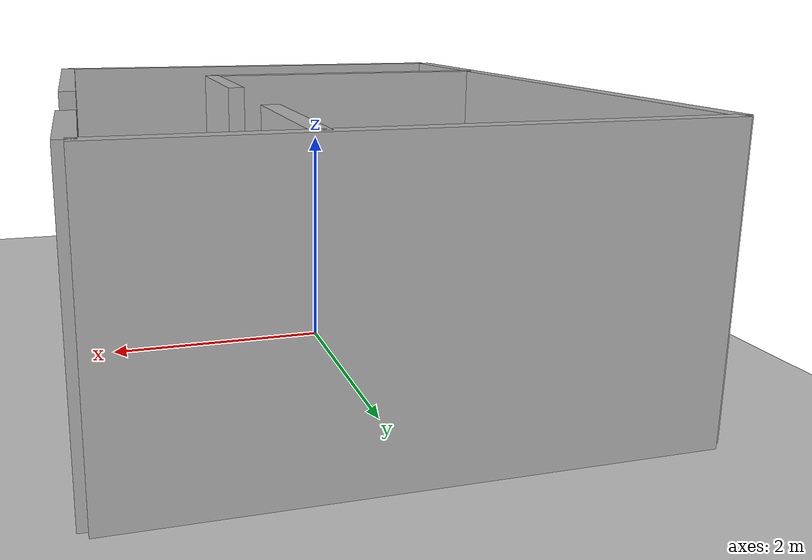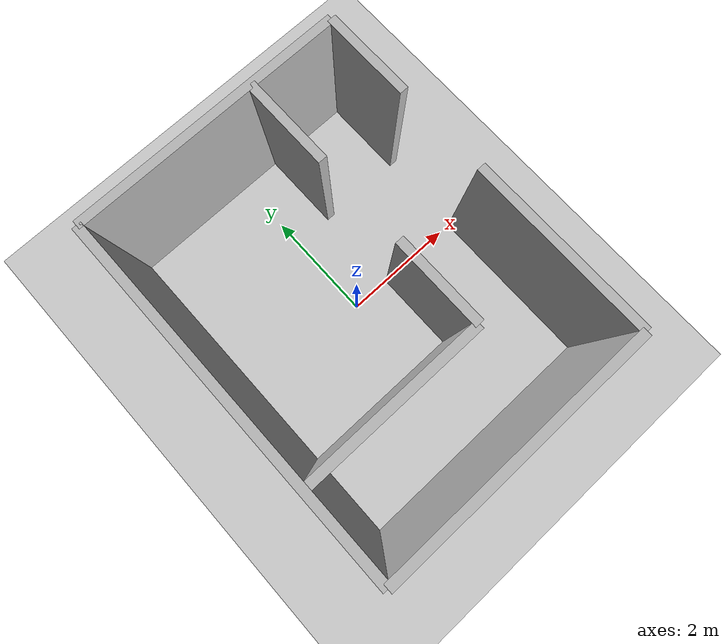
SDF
<?xml version="1.0" ?>
<sdf version="1.7">
  <world name="project1_world">

    <plugin filename="gz-sim-physics-system" name="gz::sim::systems::Physics"/>
    <plugin filename="gz-sim-user-commands-system" name="gz::sim::systems::UserCommands"/>
    <plugin filename="gz-sim-scene-broadcaster-system" name="gz::sim::systems::SceneBroadcaster"/>

    <!-- Directional Light -->
    <light type="directional" name="sun">
      <cast_shadows>true</cast_shadows>
      <pose>0 0 10 0 0 0</pose>
      <diffuse>0.8 0.8 0.8 1</diffuse>
      <specular>0.2 0.2 0.2 1</specular>
      <direction>-0.5 0.1 -0.9</direction>
    </light>

    <!-- Ground Plane -->
    <model name="ground_plane">
      <static>true</static>
      <link name="link">
        <collision name="collision">
          <geometry><plane><normal>0 0 1</normal><size>100 100</size></plane></geometry>
        </collision>
        <visual name="visual">
          <geometry><plane><normal>0 0 1</normal><size>100 100</size></plane></geometry>
          <material><ambient>0.8 0.8 0.8 1</ambient><diffuse>0.8 0.8 0.8 1</diffuse></material>
        </visual>
      </link>
    </model>

    <!-- Environment Geometry -->
    <model name="project1_environment">
      <static>true</static>
      <link name="wall_outer_north">
        <pose>0 3.048 1.25 0 0 0</pose>
        <collision name="col"><geometry><box><size>4.572 0.15 2.5</size></box></geometry></collision>
        <visual name="vis"><geometry><box><size>4.572 0.15 2.5</size></box></geometry></visual>
      </link>
      <link name="wall_outer_south">
        <pose>0 -3.048 1.25 0 0 0</pose>
        <collision name="col"><geometry><box><size>4.572 0.15 2.5</size></box></geometry></collision>
        <visual name="vis"><geometry><box><size>4.572 0.15 2.5</size></box></geometry></visual>
      </link>
      <link name="wall_outer_west">
        <pose>-2.286 0 1.25 0 0 0</pose>
        <collision name="col"><geometry><box><size>0.15 6.096 2.5</size></box></geometry></collision>
        <visual name="vis"><geometry><box><size>0.15 6.096 2.5</size></box></geometry></visual>
      </link>
      <!-- Outer east wall of the long (20 ft) hallway branch, split by the
           5 ft exit door 5 ft from the branch's closed north end
           (gap y = 0 .. 1.524). -->
      <link name="wall_outer_east_north">
        <pose>2.286 2.286 1.25 0 0 0</pose>
        <collision name="col"><geometry><box><size>0.15 1.524 2.5</size></box></geometry></collision>
        <visual name="vis"><geometry><box><size>0.15 1.524 2.5</size></box></geometry></visual>
      </link>
      <link name="wall_outer_east_south">
        <pose>2.286 -1.524 1.25 0 0 0</pose>
        <collision name="col"><geometry><box><size>0.15 3.048 2.5</size></box></geometry></collision>
        <visual name="vis"><geometry><box><size>0.15 3.048 2.5</size></box></geometry></visual>
      </link>
      <link name="wall_inner_vertical_top">
        <pose>0.762 2.286 1.25 0 0 0</pose>
        <collision name="col"><geometry><box><size>0.15 1.524 2.5</size></box></geometry></collision>
        <visual name="vis"><geometry><box><size>0.15 1.524 2.5</size></box></geometry></visual>
      </link>
      <link name="wall_inner_south_bottom">
        <pose>-0.762 -1.524 1.25 0 0 0</pose>
        <collision name="col"><geometry><box><size>3.048 0.15 2.5</size></box></geometry></collision>
        <visual name="vis"><geometry><box><size>3.048 0.15 2.5</size></box></geometry></visual>
      </link>
      <link name="wall_inner_vertical_bottom">
        <pose>0.762 -0.762 1.25 0 0 0</pose>
        <collision name="col"><geometry><box><size>0.15 1.524 2.5</size></box></geometry></collision>
        <visual name="vis"><geometry><box><size>0.15 1.524 2.5</size></box></geometry></visual>
      </link>
    </model>

  </world>
</sdf>
